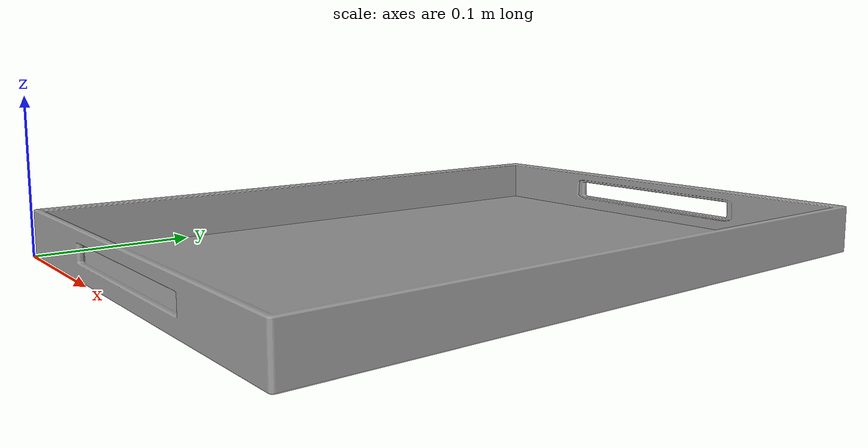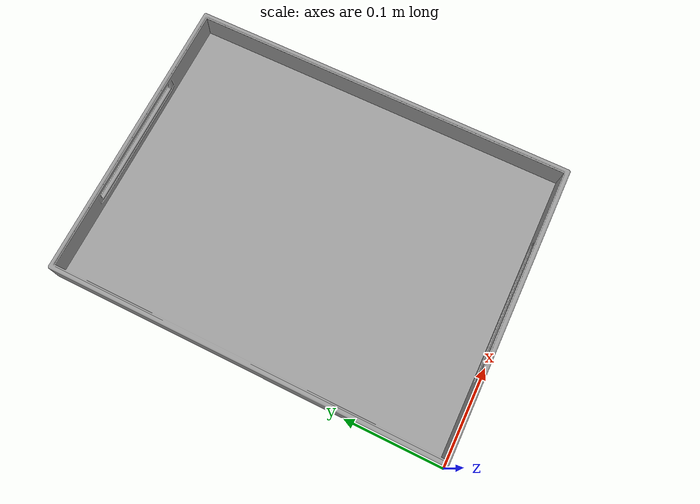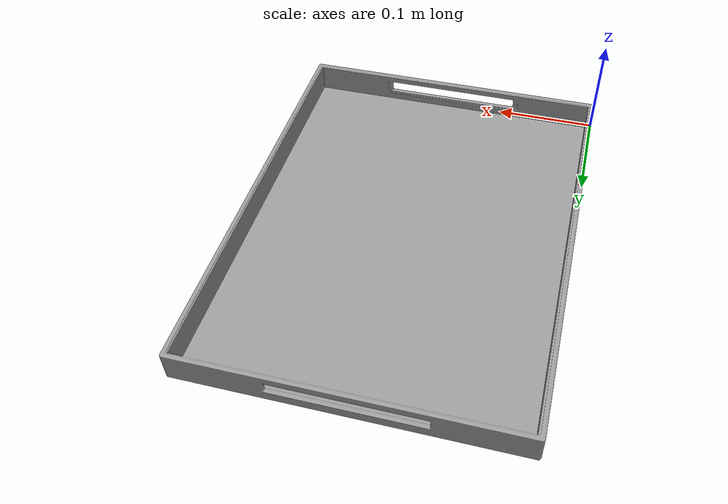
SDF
<?xml version='1.0'?>
<sdf version='1.6'>
  <model name='grey_tray'>
    <link name='link'>
        <visual name='visual'>
          <pose frame=''>0 0 0 0 -0 0</pose>
          <geometry>
            <mesh>
              <uri>model://grey_tray/meshes/model.dae</uri>
              <scale>1.19 1.2 0.5</scale>
            </mesh>
          </geometry>
          <material>
            <script>
              <uri>file://media/materials/scripts/gazebo.material</uri>
              <name>Gazebo/Grey</name>
            </script>
          </material>
          <cast_shadows>1</cast_shadows>
          <transparency>0</transparency>
        </visual>
        <collision name='collision_bottom'>
            <laser_retro>0</laser_retro>
            <max_contacts>10</max_contacts>
            <pose frame=''>0.155 0.205 0.001 0 -0 0</pose>
            <geometry>
              <box>
                <size>0.31 0.41 0.002</size>
              </box>
            </geometry>
        </collision>
        <collision name='far_wall_collision'>
            <laser_retro>0</laser_retro>
            <max_contacts>10</max_contacts>
            <pose frame=''>0.3075 0.205 0.015 0 -0 0</pose>
            <geometry>
              <box>
                <size>0.005 0.41 0.03</size>
              </box>
            </geometry>
        </collision>
        <collision name='near_wall_collision'>
          <laser_retro>0</laser_retro>
          <max_contacts>10</max_contacts>
          <pose frame=''>0.0025 0.205 0.015 0 -0 0</pose>
          <geometry>
            <box>
              <size>0.005 0.41 0.03</size>
            </box>
          </geometry>
        </collision>
        <collision name='right_wall_collision'>
          <laser_retro>0</laser_retro>
          <max_contacts>10</max_contacts>
          <pose frame=''>0.155 0.4075 0.015 0 -0 0</pose>
          <geometry>
            <box>
              <size>0.31 0.005 0.03</size>
            </box>
          </geometry>
        </collision>
        <collision name='left_wall_collision'>
          <laser_retro>0</laser_retro>
          <max_contacts>10</max_contacts>
          <pose frame=''>0.155 0.0025 0.015 0 -0 0</pose>
          <geometry>
            <box>
              <size>0.31 0.005 0.03</size>
            </box>
          </geometry>
        </collision>
    </link>
    <static>1</static>
    <allow_auto_disable>1</allow_auto_disable>
  </model>
</sdf>
